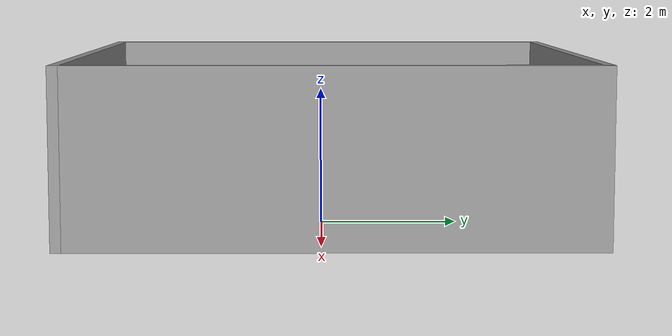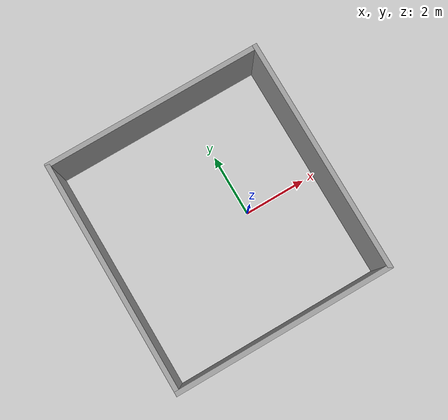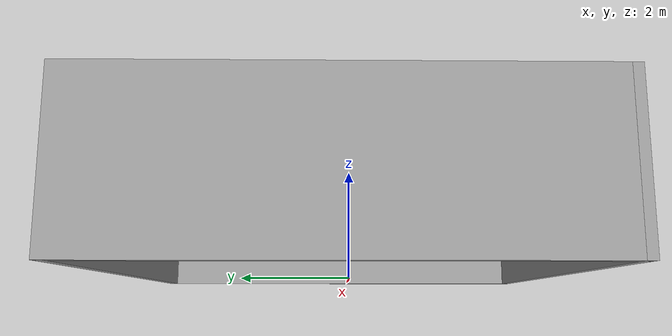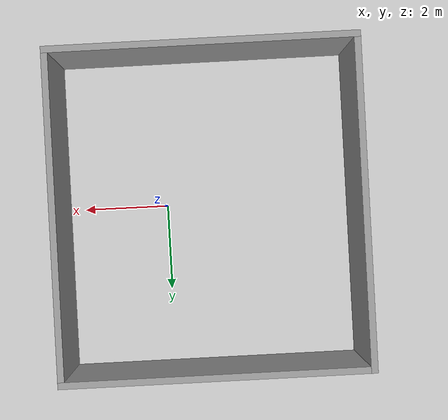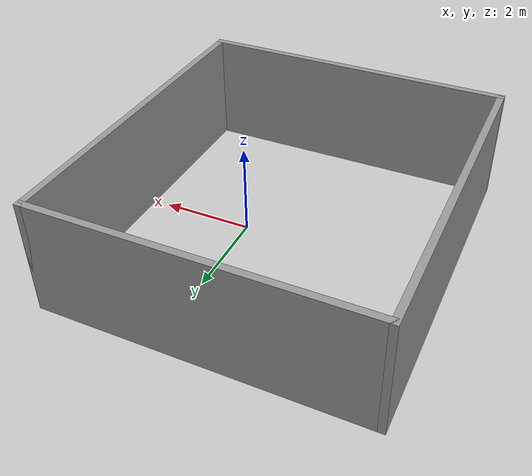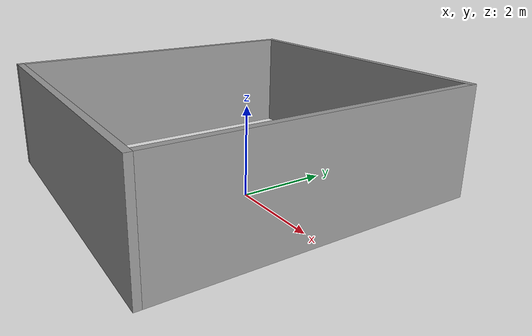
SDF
<?xml version='1.0'?>
<sdf version='1.7'>
  <model name='room1'>
    <pose>-0.995754 0.135509 0 0 -0 0</pose>
    <link name='Wall_22'>
      <collision name='Wall_22_Collision'>
        <geometry>
          <box>
            <size>7 0.15 2.5</size>
          </box>
        </geometry>
        <pose>0 0 1.25 0 -0 0</pose>
      </collision>
      <visual name='Wall_22_Visual'>
        <pose>0 0 1.25 0 -0 0</pose>
        <geometry>
          <box>
            <size>7 0.15 2.5</size>
          </box>
        </geometry>
        <material>
          <script>
            <uri>file://media/materials/scripts/gazebo.material</uri>
            <name>Gazebo/Grey</name>
          </script>
          <ambient>1 1 1 1</ambient>
        </material>
        <meta>
          <layer>0</layer>
        </meta>
      </visual>
      <pose>0 -3.675 0 0 -0 3.14159</pose>
    </link>
    <link name='Wall_23'>
      <collision name='Wall_23_Collision'>
        <geometry>
          <box>
            <size>7.5 0.15 2.5</size>
          </box>
        </geometry>
        <pose>0 0 1.25 0 -0 0</pose>
      </collision>
      <visual name='Wall_23_Visual'>
        <pose>0 0 1.25 0 -0 0</pose>
        <geometry>
          <box>
            <size>7.5 0.15 2.5</size>
          </box>
        </geometry>
        <material>
          <script>
            <uri>file://media/materials/scripts/gazebo.material</uri>
            <name>Gazebo/Grey</name>
          </script>
          <ambient>1 1 1 1</ambient>
        </material>
        <meta>
          <layer>0</layer>
        </meta>
      </visual>
      <pose>-3.425 0 0 0 -0 1.5708</pose>
    </link>
    <link name='Wall_24'>
      <collision name='Wall_24_Collision'>
        <geometry>
          <box>
            <size>7 0.15 2.5</size>
          </box>
        </geometry>
        <pose>0 0 1.25 0 -0 0</pose>
      </collision>
      <visual name='Wall_24_Visual'>
        <pose>0 0 1.25 0 -0 0</pose>
        <geometry>
          <box>
            <size>7 0.15 2.5</size>
          </box>
        </geometry>
        <material>
          <script>
            <uri>file://media/materials/scripts/gazebo.material</uri>
            <name>Gazebo/Grey</name>
          </script>
          <ambient>1 1 1 1</ambient>
        </material>
        <meta>
          <layer>0</layer>
        </meta>
      </visual>
      <pose>0 3.675 0 0 -0 0</pose>
    </link>
    <link name='Wall_25'>
      <collision name='Wall_25_Collision'>
        <geometry>
          <box>
            <size>7.5 0.15 2.5</size>
          </box>
        </geometry>
        <pose>0 0 1.25 0 -0 0</pose>
      </collision>
      <visual name='Wall_25_Visual'>
        <pose>0 0 1.25 0 -0 0</pose>
        <geometry>
          <box>
            <size>7.5 0.15 2.5</size>
          </box>
        </geometry>
        <material>
          <script>
            <uri>file://media/materials/scripts/gazebo.material</uri>
            <name>Gazebo/Grey</name>
          </script>
          <ambient>1 1 1 1</ambient>
        </material>
        <meta>
          <layer>0</layer>
        </meta>
      </visual>
      <pose>3.425 0 0 0 -0 -1.5708</pose>
    </link>
    <static>1</static>
  </model>
</sdf>
